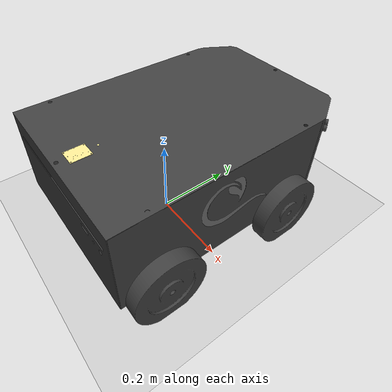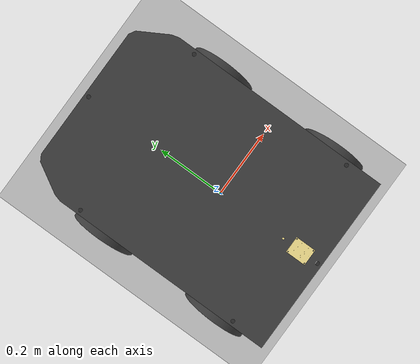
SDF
<sdf version='1.9'>
  <world name="car_world">

    <spherical_coordinates>
      <surface_model>EARTH_WGS84</surface_model>
      <world_frame_orientation>ENU</world_frame_orientation>
      <latitude_deg>47.397742</latitude_deg>    <!-- same as sensor -->
      <longitude_deg>8.545594</longitude_deg>
      <elevation>488.0</elevation>
      <heading_deg>0</heading_deg>
    </spherical_coordinates>

    <physics name="1ms" type="ignored">
      <max_step_size>0.001</max_step_size>
      <real_time_factor>1.0</real_time_factor>
    </physics>
    <plugin
      filename="libignition-gazebo-physics-system.so"
      name="ignition::gazebo::systems::Physics">
    </plugin>
    <plugin
      filename="libignition-gazebo-user-commands-system.so"
      name="ignition::gazebo::systems::UserCommands">
    </plugin>
    <plugin
      filename="libignition-gazebo-scene-broadcaster-system.so"
      name="ignition::gazebo::systems::SceneBroadcaster">
    </plugin>

    <light type="directional" name="sun">
      <cast_shadows>true</cast_shadows>
      <pose>0 0 10 0 0 0</pose>
      <diffuse>0.8 0.8 0.8 1</diffuse>
      <specular>0.2 0.2 0.2 1</specular>
      <attenuation>
        <range>1000</range>
        <constant>0.9</constant>
        <linear>0.01</linear>
        <quadratic>0.001</quadratic>
      </attenuation>
      <direction>-0.5 0.1 -0.9</direction>
    </light>

    <model name="ground_plane">
      <static>true</static>
      <link name="link">
        <collision name="collision">
          <geometry>
            <plane>
              <normal>0 0 1</normal>
            </plane>
          </geometry>
        </collision>
        <visual name="visual">
          <geometry>
            <plane>
              <normal>0 0 1</normal>
              <size>100 100</size>
            </plane>
          </geometry>
          <material>
            <ambient>0.8 0.8 0.8 1</ambient>
            <diffuse>0.8 0.8 0.8 1</diffuse>
            <specular>0.8 0.8 0.8 1</specular>
          </material>
        </visual>
      </link>
    </model>
    <model name='Assem1'>
      <pose>0 0 0.1 0 0 0</pose>
      <link name='base_link'>
        <inertial>
          <pose>-0.001613669887424211 0.04743360968844424 0.07810236372253125 0 0 0</pose>
          <mass>5.169215648886329</mass>
          <inertia>
            <ixx>0.26340802474638231</ixx>
            <ixy>-9.4946831182606245e-05</ixy>
            <ixz>0.00014214496635701069</ixz>
            <iyy>0.15252833197381879</iyy>
            <iyz>0.00037637662006314779</iyz>
            <izz>0.37115471987722631</izz>
          </inertia>
        </inertial>

        <sensor name="imu" type="imu">
          <always_on>1</always_on>
          <update_rate>100</update_rate>
          <topic>/imu</topic>
          <imu>
            <enable_orientation>0</enable_orientation>
            <angular_velocity>
              <x>
                <noise type="gaussian">
                  <mean>0</mean>
                  <stddev>0.009</stddev>
                  <bias_mean>0.00075</bias_mean>
                  <bias_stddev>0.005</bias_stddev>
                  <dynamic_bias_stddev>0.00002</dynamic_bias_stddev>
                  <dynamic_bias_correlation_time>400.0</dynamic_bias_correlation_time>
                  <precision>0.00025</precision>
                </noise>
              </x>
              <y>
                <noise type="gaussian">
                  <mean>0</mean>
                  <stddev>0.009</stddev>
                  <bias_mean>0.00075</bias_mean>
                  <bias_stddev>0.005</bias_stddev>
                  <dynamic_bias_stddev>0.00002</dynamic_bias_stddev>
                  <dynamic_bias_correlation_time>400.0</dynamic_bias_correlation_time>
                  <precision>0.00025</precision>
                </noise>
              </y>
              <z>
                <noise type="gaussian">
                  <mean>0</mean>
                  <stddev>0.009</stddev>
                  <bias_mean>0.00075</bias_mean>
                  <bias_stddev>0.005</bias_stddev>
                  <dynamic_bias_stddev>0.00002</dynamic_bias_stddev>
                  <dynamic_bias_correlation_time>400.0</dynamic_bias_correlation_time>
                  <precision>0.00025</precision>
                </noise>
              </z>
            </angular_velocity>
            <linear_acceleration>
              <x>
                <noise type="gaussian">
                  <mean>0</mean>
                  <stddev>0.021</stddev>
                  <bias_mean>0.05</bias_mean>
                  <bias_stddev>0.0075</bias_stddev>
                  <dynamic_bias_stddev>0.000375</dynamic_bias_stddev>
                  <dynamic_bias_correlation_time>175.0</dynamic_bias_correlation_time>
                  <precision>0.005</precision>
                </noise>
              </x>
              <y>
                <noise type="gaussian">
                  <mean>0</mean>
                  <stddev>0.021</stddev>
                  <bias_mean>0.05</bias_mean>
                  <bias_stddev>0.0075</bias_stddev>
                  <dynamic_bias_stddev>0.000375</dynamic_bias_stddev>
                  <dynamic_bias_correlation_time>175.0</dynamic_bias_correlation_time>
                  <precision>0.005</precision>
                </noise>
              </y>
              <z>
                <noise type="gaussian">
                  <mean>0</mean>
                  <stddev>0.021</stddev>
                  <bias_mean>0.05</bias_mean>
                  <bias_stddev>0.0075</bias_stddev>
                  <dynamic_bias_stddev>0.000375</dynamic_bias_stddev>
                  <dynamic_bias_correlation_time>175.0</dynamic_bias_correlation_time>
                  <precision>0.005</precision>
                </noise>
              </z>
            </linear_acceleration>
          </imu>
        </sensor>

        <collision name='base_link_collision'>
          <pose>0 0 0 0 0 0</pose>
          <geometry>
            <mesh>
              <scale>1 1 1</scale>
              <uri>./meshes/base_link.STL</uri>
            </mesh>
          </geometry>
        </collision>
        <collision name='base_link_fixed_joint_lump__LDR_Link_collision_1'>
          <pose>-0.00028089 -0.16448 0.19368 0 0 0</pose>
          <geometry>
            <mesh>
              <scale>1 1 1</scale>
              <uri>./meshes/LDR_Link.STL</uri>
            </mesh>
          </geometry>
        </collision>
        <collision name='base_link_fixed_joint_lump__Left_UltraSonic_Link_collision_2'>
          <pose>-0.19797 0.33668 0.14299 0 0 0</pose>
          <geometry>
            <mesh>
              <scale>1 1 1</scale>
              <uri>./meshes/Left_UltraSonic_Link.STL</uri>
            </mesh>
          </geometry>
        </collision>
        <collision name='base_link_fixed_joint_lump__Mid_UltraSonic_Link_collision_3'>
          <pose>-0.00028041 0.37868 0.062988 0 0 0</pose>
          <geometry>
            <mesh>
              <scale>1 1 1</scale>
              <uri>./meshes/Mid_UltraSonic_Link.STL</uri>
            </mesh>
          </geometry>
        </collision>
        <collision name='base_link_fixed_joint_lump__Rain_sensor_Link_collision_4'>
          <pose>-0.00016446 -0.21221 0.19478 0 0 0</pose>
          <geometry>
            <mesh>
              <scale>1 1 1</scale>
              <uri>./meshes/Rain_sensor_Link.STL</uri>
            </mesh>
          </geometry>
        </collision>
        <collision name='base_link_fixed_joint_lump__Right_UltraSonic_Link_collision_5'>
          <pose>0.19741 0.33668 0.14299 0 0 0</pose>
          <geometry>
            <mesh>
              <scale>1 1 1</scale>
              <uri>./meshes/Right_UltraSonic_Link.STL</uri>
            </mesh>
          </geometry>
        </collision>
        <visual name='base_link_visual'>
          <pose>0 0 0 0 0 0</pose>
          <geometry>
            <mesh>
              <scale>1 1 1</scale>
              <uri>./meshes/base_link.STL</uri>
            </mesh>
          </geometry>
          <material>
            <diffuse>0.25 0.25 0.25 1</diffuse>
            <ambient>0.25 0.25 0.25 1</ambient>
          </material>
        </visual>
        <visual name='base_link_fixed_joint_lump__LDR_Link_visual_1'>
          <pose>-0.00028089 -0.16448 0.19368 0 0 0</pose>
          <geometry>
            <mesh>
              <scale>1 1 1</scale>
              <uri>./meshes/LDR_Link.STL</uri>
            </mesh>
          </geometry>
          <material>
            <diffuse>1 0.921569 0.583333 1</diffuse>
            <ambient>1 0.921569 0.583333 1</ambient>
          </material>
        </visual>
        <visual name='base_link_fixed_joint_lump__Left_UltraSonic_Link_visual_2'>
          <pose>-0.19797 0.33668 0.14299 0 0 0</pose>
          <geometry>
            <mesh>
              <scale>1 1 1</scale>
              <uri>./meshes/Left_UltraSonic_Link.STL</uri>
            </mesh>
          </geometry>
          <material>
            <diffuse>0.25 0.25 0.25 1</diffuse>
            <ambient>0.25 0.25 0.25 1</ambient>
          </material>
        </visual>
        <visual name='base_link_fixed_joint_lump__Mid_UltraSonic_Link_visual_3'>
          <pose>-0.00028041 0.37868 0.062988 0 0 0</pose>
          <geometry>
            <mesh>
              <scale>1 1 1</scale>
              <uri>./meshes/Mid_UltraSonic_Link.STL</uri>
            </mesh>
          </geometry>
          <material>
            <diffuse>0.25 0.25 0.25 1</diffuse>
            <ambient>0.25 0.25 0.25 1</ambient>
          </material>
        </visual>
        <visual name='base_link_fixed_joint_lump__Rain_sensor_Link_visual_4'>
          <pose>-0.00016446 -0.21221 0.19478 0 0 0</pose>
          <geometry>
            <mesh>
              <scale>1 1 1</scale>
              <uri>./meshes/Rain_sensor_Link.STL</uri>
            </mesh>
          </geometry>
          <material>
            <diffuse>1 0.921569 0.583333 1</diffuse>
            <ambient>1 0.921569 0.583333 1</ambient>
          </material>
        </visual>
        <visual name='base_link_fixed_joint_lump__Right_UltraSonic_Link_visual_5'>
          <pose>0.19741 0.33668 0.14299 0 0 0</pose>
          <geometry>
            <mesh>
              <scale>1 1 1</scale>
              <uri>./meshes/Right_UltraSonic_Link.STL</uri>
            </mesh>
          </geometry>
          <material>
            <diffuse>0.25 0.25 0.25 1</diffuse>
            <ambient>0.25 0.25 0.25 1</ambient>
          </material>
        </visual>
      </link>
      <joint name='Back_Left_Wheel_Joint' type='revolute'>
        <pose relative_to='base_link'>-0.26628 -0.16812 -0.018196 0 0 0</pose>
        <parent>base_link</parent>
        <child>Back_Left_Wheel_Link</child>
        <axis>
          <xyz>1 0 0</xyz>
          <limit>
            <lower>-10000000000000000</lower>
            <upper>10000000000000000</upper>
          </limit>
          <dynamics>
            <spring_reference>0</spring_reference>
            <spring_stiffness>0</spring_stiffness>
          </dynamics>
        </axis>
      </joint>
      <link name='Back_Left_Wheel_Link'>
        <pose relative_to='Back_Left_Wheel_Joint'>0 0 0 0 0 0</pose>
        <inertial>
          <pose>0.0180002141847672 0 -1.11022302462516e-16 0 0 0</pose>
          <mass>5.74040111939052</mass>
          <inertia>
            <ixx>0.024701173916752101</ixx>
            <ixy>6.1785486823547901e-19</ixy>
            <ixz>-3.8344919595494203e-17</ixz>
            <iyy>0.012883168156823501</iyy>
            <iyz>8.4129297554754997e-20</iyz>
            <izz>0.012883168156823501</izz>
          </inertia>
        </inertial>
        <collision name='Back_Left_Wheel_Link_collision'>
          <pose>0 0 0 0 0 0</pose>
          <geometry>
            <mesh>
              <scale>1 1 1</scale>
              <uri>./meshes/Back_Left_Wheel_Link.STL</uri>
            </mesh>
          </geometry>
        </collision>
        <visual name='Back_Left_Wheel_Link_visual'>
          <pose>0 0 0 0 0 0</pose>
          <geometry>
            <mesh>
              <scale>1 1 1</scale>
              <uri>./meshes/Back_Left_Wheel_Link.STL</uri>
            </mesh>
          </geometry>
          <material>
            <diffuse>0.25 0.25 0.25 1</diffuse>
            <ambient>0.25 0.25 0.25 1</ambient>
          </material>
        </visual>
      </link>
      <joint name='Back_Right_Wheel_Joint' type='revolute'>
        <pose relative_to='base_link'>-0.26628 -0.16812 -0.018196 0 0 0</pose>
        <parent>base_link</parent>
        <child>Back_Right_Wheel_Link</child>
        <axis>
          <xyz>1 0 0</xyz>
          <limit>
            <lower>-10000000000000000</lower>
            <upper>10000000000000000</upper>
          </limit>
          <dynamics>
            <spring_reference>0</spring_reference>
            <spring_stiffness>0</spring_stiffness>
          </dynamics>
        </axis>
      </joint>
      <link name='Back_Right_Wheel_Link'>
        <pose relative_to='Back_Right_Wheel_Joint'>0 0 0 0 0 0</pose>
        <inertial>
          <pose>0.514000214184765 -5.52335954751015e-15 -4.44089209850063e-15 0 0 0</pose>
          <mass>5.7404011193905102</mass>
          <inertia>
            <ixx>0.024701173916752101</ixx>
            <ixy>2.65430082145206e-20</ixy>
            <ixz>1.34698732310558e-20</ixz>
            <iyy>0.0128831681568234</iyy>
            <iyz>-2.07715639723907e-20</iyz>
            <izz>0.0128831681568234</izz>
          </inertia>
        </inertial>
        <collision name='Back_Right_Wheel_Link_collision'>
          <pose>0 0 0 0 0 0</pose>
          <geometry>
            <mesh>
              <scale>1 1 1</scale>
              <uri>./meshes/Back_Right_Wheel_Link.STL</uri>
            </mesh>
          </geometry>
        </collision>
        <visual name='Back_Right_Wheel_Link_visual'>
          <pose>0 0 0 0 0 0</pose>
          <geometry>
            <mesh>
              <scale>1 1 1</scale>
              <uri>./meshes/Back_Right_Wheel_Link.STL</uri>
            </mesh>
          </geometry>
          <material>
            <diffuse>0.25 0.25 0.25 1</diffuse>
            <ambient>0.25 0.25 0.25 1</ambient>
          </material>
        </visual>
      </link>
      <joint name='Front_Left_Wheel_Joint' type='revolute'>
        <pose relative_to='base_link'>-0.26528 0.18418 -0.018196 0 0 0</pose>
        <parent>base_link</parent>
        <child>Front_Left_Wheel_Link</child>
        <axis>
          <xyz>1 0 0</xyz>
          <limit>
            <lower>-10000000000000000</lower>
            <upper>10000000000000000</upper>
          </limit>
          <dynamics>
            <spring_reference>0</spring_reference>
            <spring_stiffness>0</spring_stiffness>
          </dynamics>
        </axis>
      </joint>
      <link name='Front_Left_Wheel_Link'>
        <pose relative_to='Front_Left_Wheel_Joint'>0 0 0 0 0 0</pose>
        <inertial>
          <pose>0.0170002141847672 0 1.11022302462516e-16 0 0 0</pose>
          <mass>5.7404011193905102</mass>
          <inertia>
            <ixx>0.024701173916752101</ixx>
            <ixy>2.6382826966317798e-18</ixy>
            <ixz>4.1675703171269401e-17</ixz>
            <iyy>0.012883168156823501</iyy>
            <iyz>5.5681892476625799e-20</iyz>
            <izz>0.012883168156823501</izz>
          </inertia>
        </inertial>
        <collision name='Front_Left_Wheel_Link_collision'>
          <pose>0 0 0 0 0 0</pose>
          <geometry>
            <mesh>
              <scale>1 1 1</scale>
              <uri>./meshes/Front_Left_Wheel_Link.STL</uri>
            </mesh>
          </geometry>
        </collision>
        <visual name='Front_Left_Wheel_Link_visual'>
          <pose>0 0 0 0 0 0</pose>
          <geometry>
            <mesh>
              <scale>1 1 1</scale>
              <uri>./meshes/Front_Left_Wheel_Link.STL</uri>
            </mesh>
          </geometry>
          <material>
            <diffuse>0.25 0.25 0.25 1</diffuse>
            <ambient>0.25 0.25 0.25 1</ambient>
          </material>
        </visual>
      </link>
      <joint name='Front_Right_Wheel_Joint' type='revolute'>
        <pose relative_to='base_link'>0.26572 0.18418 -0.018176 0 0 0</pose>
        <parent>base_link</parent>
        <child>Front_Right_Wheel_Link</child>
        <axis>
          <xyz>1 0 0</xyz>
          <limit>
            <lower>-10000000000000000</lower>
            <upper>10000000000000000</upper>
          </limit>
          <dynamics>
            <spring_reference>0</spring_reference>
            <spring_stiffness>0</spring_stiffness>
          </dynamics>
        </axis>
      </joint>
      <link name='Front_Right_Wheel_Link'>
        <pose relative_to='Front_Right_Wheel_Joint'>0 0 0 0 0 0</pose>
        <inertial>
          <pose>-0.0179997858152329 0 0 0 0 0</pose>
          <mass>5.7404011193905102</mass>
          <inertia>
            <ixx>0.024701173916752101</ixx>
            <ixy>1.0780891540480801e-18</ixy>
            <ixz>-3.7852821250140798e-17</ixz>
            <iyy>0.0128831681568234</iyy>
            <iyz>-3.52568682324834e-18</iyz>
            <izz>0.0128831681568234</izz>
          </inertia>
        </inertial>

        <collision name='Front_Right_Wheel_Link_collision'>
          <pose>0 0 0 0 0 0</pose>
          <geometry>
            <mesh>
              <scale>1 1 1</scale>
              <uri>./meshes/Front_Right_Wheel_Link.STL</uri>
            </mesh>
          </geometry>
        </collision>
        <visual name='Front_Right_Wheel_Link_visual'>
          <pose>0 0 0 0 0 0</pose>
          <geometry>
            <mesh>
              <scale>1 1 1</scale>
              <uri>./meshes/Front_Right_Wheel_Link.STL</uri>
            </mesh>
          </geometry>
          <material>
            <diffuse>0.25 0.25 0.25 1</diffuse>
            <ambient>0.25 0.25 0.25 1</ambient>
          </material>
        </visual>
      </link>
      <frame name='LDR_Joint' attached_to='base_link'>
        <pose>-0.000281 -0.16448 0.19368 0 -0 0</pose>
      </frame>
      <frame name='LDR_Link' attached_to='LDR_Joint'/>
      <frame name='Left_UltraSonic_Joint' attached_to='base_link'>
        <pose>-0.19797 0.33668 0.14299 0 -0 0</pose>
      </frame>
      <frame name='Left_UltraSonic_Link' attached_to='Left_UltraSonic_Joint'/>
      <frame name='Mid_UltraSonic_Joint' attached_to='base_link'>
        <pose>-0.00028 0.37868 0.062988 0 -0 0</pose>
      </frame>
      <frame name='Mid_UltraSonic_Link' attached_to='Mid_UltraSonic_Joint'/>
      <frame name='Rain_sensor_Joint' attached_to='base_link'>
        <pose>-0.000164 -0.21221 0.19478 0 -0 0</pose>
      </frame>
      <frame name='Rain_sensor_Link' attached_to='Rain_sensor_Joint'/>
      <frame name='Right_UltraSonic_Joint' attached_to='base_link'>
        <pose>0.19741 0.33668 0.14299 0 -0 0</pose>
      </frame>
      <frame name='Right_UltraSonic_Link' attached_to='Right_UltraSonic_Joint'/>

      <plugin filename="libignition-gazebo-diff-drive-system.so" name="ignition::gazebo::systems::DiffDrive">
        <left_joint>Front_Left_Wheel_Joint</left_joint>
        <left_joint>Back_Left_Wheel_Joint</left_joint>
        <right_joint>Front_Right_Wheel_Joint</right_joint>
        <right_joint>Back_Right_Wheel_Joint</right_joint>
        <wheel_separation>0.53144</wheel_separation>
        <wheel_radius>0.1</wheel_radius>
        <odom_publish_frequency>50</odom_publish_frequency>
        <topic>cmd_vel</topic>
      </plugin>

      <plugin filename="gz-sim-joint-state-publisher-system"
              name="gz::sim::systems::JointStatePublisher">
        <joint_name>Front_Left_Wheel_Joint</joint_name>
        <joint_name>Front_Right_Wheel_Joint</joint_name>
        <joint_name>Back_Left_Wheel_Joint</joint_name>
        <joint_name>Back_Right_Wheel_Joint</joint_name>
            <update_rate>10</update_rate>

      </plugin>

        <plugin filename="ignition-gazebo-odometry-publisher-system"
                name="ignition::gazebo::systems::OdometryPublisher">
            <odom_frame>odom</odom_frame>
            <odom_covariance_topic>odom</odom_covariance_topic>
            <tf_topic>tf</tf_topic>
            <robot_base_frame>base_footprint</robot_base_frame>
        </plugin>

        <plugin filename="ignition-gazebo-navsat-system" name="ignition::gazebo::systems::NavSat"/>
        <link name="gps_link">
          <sensor name="navsat_sensor" type="navsat">
            <always_on>1</always_on>
            <update_rate>1</update_rate>
            <topicName>/gps</topicName>
            <frameName>rtk_gps_link</frameName>
            <lat>47.397742</lat>
            <lon>8.545594</lon>
            <alt>488.0</alt>
          </sensor>
        </link>

    </model>
  </world>
</sdf>
